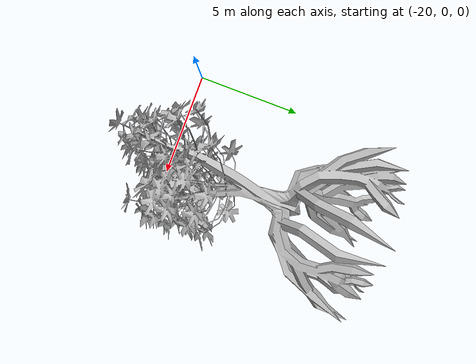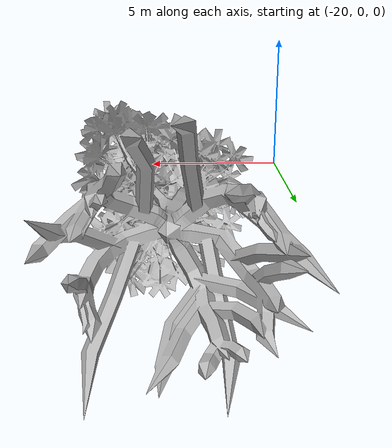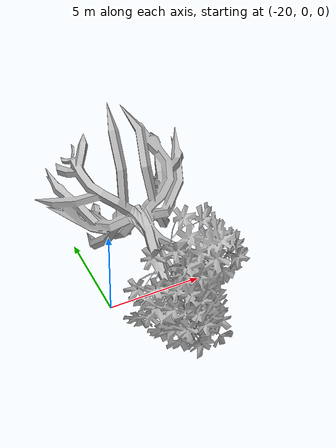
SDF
<?xml version="1.0" ?>
<sdf version="1.10">
  <model name="mangrove_07_15m">
    <pose>0 0 0 0 0 0</pose>
    <static>true</static>
    <link name="visual_only_link">
      <!-- Terrain at (14, 7) is approximately 0.03 m above world zero. -->
      <pose>-15.247 9.951 -0.20 1.5708 0 0</pose>
      <visual name="imported_mangrove_visual"><geometry><mesh><uri>model://mangrove_imported/meshes/Mangrovetree.glb</uri><scale>5.35 5.35 5.35</scale></mesh></geometry></visual>
    </link>
    <!-- The converted GLB mesh is the authoritative visual and collision geometry. -->
    <!-- A mesh collision is used so Gazebo physics and LiDAR can detect the tree shape. -->
    <link name="glb_collision_link">
      <pose>0 0 1.088 0 0 0</pose>
      <collision name="glb_mesh_collision">
        <geometry><cylinder><radius>1.3</radius><length>5.0</length></cylinder></geometry>
      </collision>
    </link>
  </model>
</sdf>
